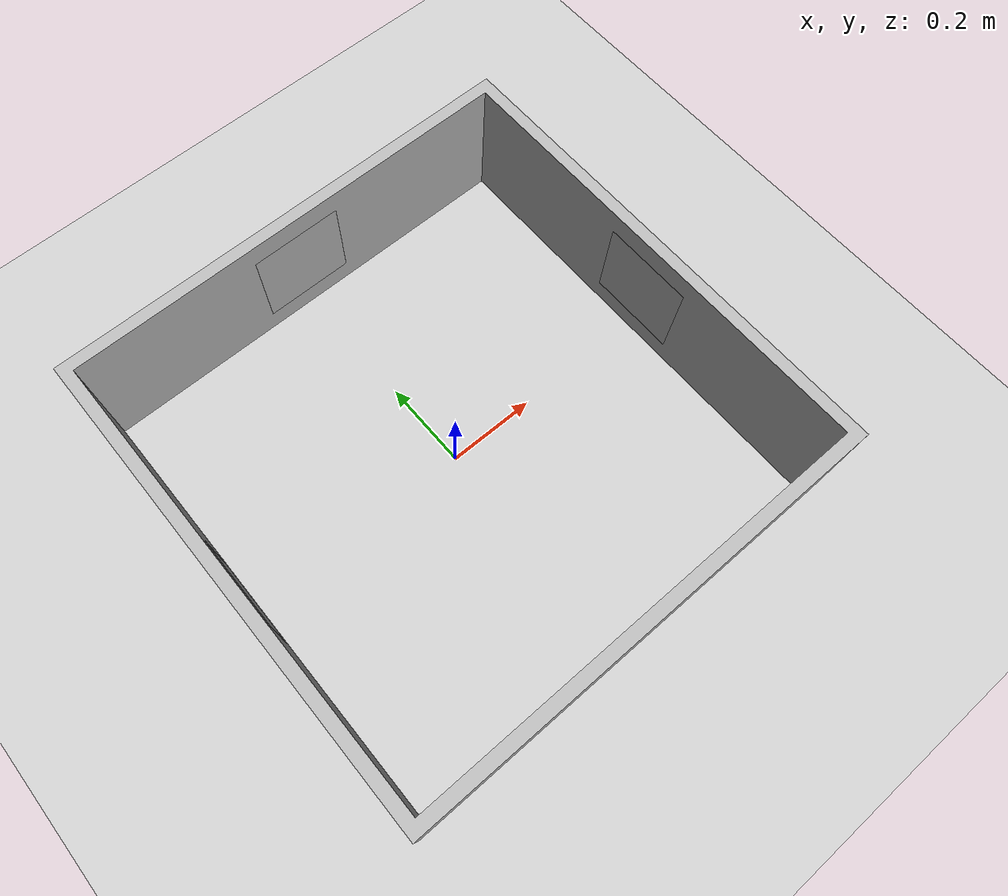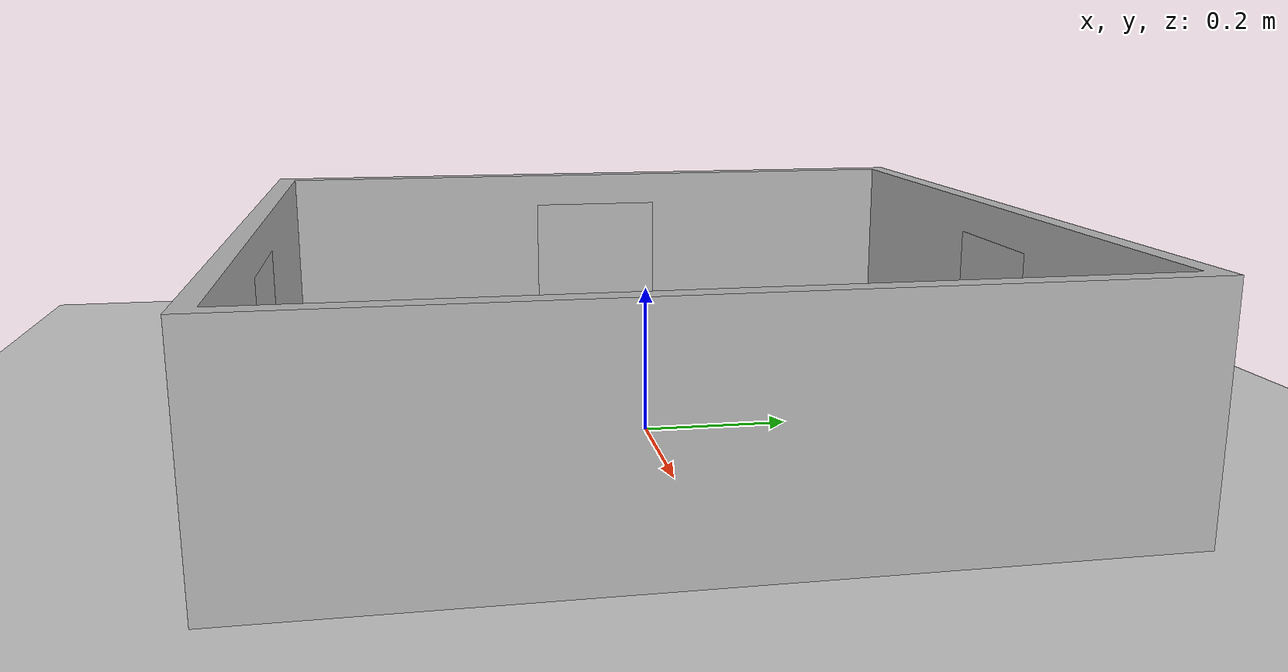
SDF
<?xml version="1.0"?>
<sdf version="1.8">
  <world name="apriltag_box">
    <physics type="ode">
      <real_time_update_rate>1000.0</real_time_update_rate>
      <max_step_size>0.001</max_step_size>
      <real_time_factor>1</real_time_factor>
      <ode>
        <solver>
          <type>quick</type>
          <iters>150</iters>
          <precon_iters>0</precon_iters>
          <sor>1.4</sor>
          <use_dynamic_moi_rescaling>1</use_dynamic_moi_rescaling>
        </solver>
        <constraints>
          <cfm>0.00001</cfm>
          <erp>0.2</erp>
          <contact_max_correcting_vel>2000.0</contact_max_correcting_vel>
          <contact_surface_layer>0.01</contact_surface_layer>
        </constraints>
      </ode>
    </physics>

    <plugin filename="gz-sim-physics-system" name="gz::sim::systems::Physics"/>
    <plugin filename="gz-sim-user-commands-system" name="gz::sim::systems::UserCommands"/>
    <plugin filename="gz-sim-scene-broadcaster-system"
            name="gz::sim::systems::SceneBroadcaster"/>
    <plugin filename="gz-sim-sensors-system" name="gz::sim::systems::Sensors">
      <render_engine>ogre2</render_engine>
    </plugin>
    <plugin filename="gz-sim-imu-system" name="gz::sim::systems::Imu"/>

    <include>
      <uri>https://fuel.gazebosim.org/1.0/OpenRobotics/models/Ground Plane</uri>
    </include>
    <include>
      <uri>https://fuel.gazebosim.org/1.0/OpenRobotics/models/Sun</uri>
    </include>
    <include>
      <uri>model://apriltag-box</uri>
    </include>
  </world>
</sdf>

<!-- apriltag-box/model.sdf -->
<sdf version="1.8">
  <model name="apriltag-box">
    <static>true</static>
    <!-- The OBJ's Bottom face is local X=0; rotate it onto Gazebo's Z=0 plane. -->
    <pose>0 0 0 0 -1.57079632679 0</pose>

    <link name="walls_link">
      <collision name="collision">
        <geometry>
          <mesh>
            <uri>model://apriltag-box/meshes/walls/walls.obj</uri>
          </mesh>
        </geometry>
      </collision>

      <visual name="walls">
        <cast_shadows>false</cast_shadows>
        <geometry>
          <mesh>
            <uri>model://apriltag-box/meshes/walls/walls.obj</uri>
          </mesh>
        </geometry>
      </visual>

      <visual name="tags">
        <cast_shadows>false</cast_shadows>
        <geometry>
          <mesh>
            <uri>model://apriltag-box/meshes/tags/tags.obj</uri>
          </mesh>
        </geometry>
      </visual>
    </link>
  </model>
</sdf>
